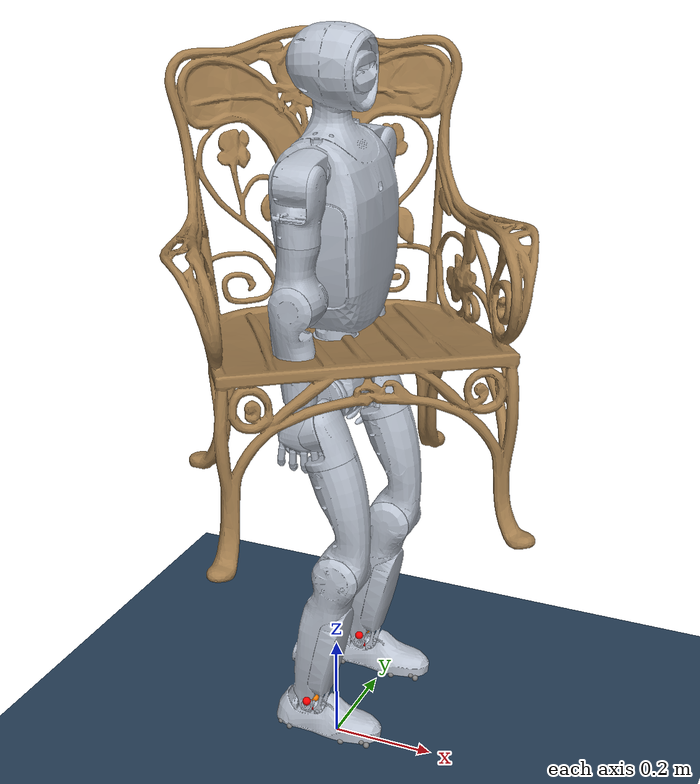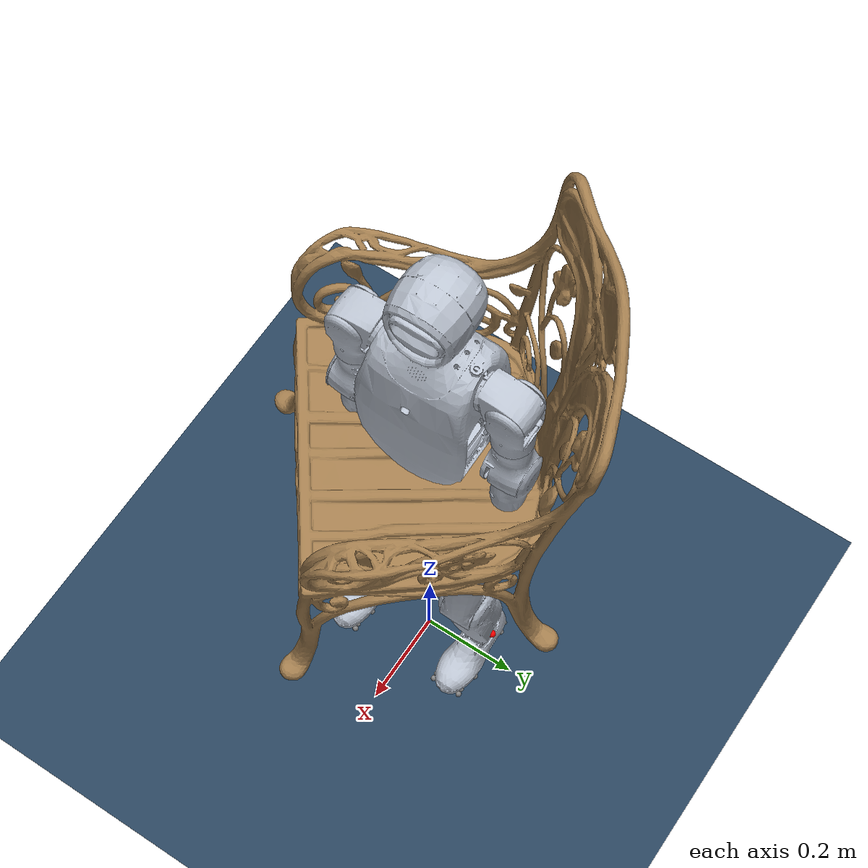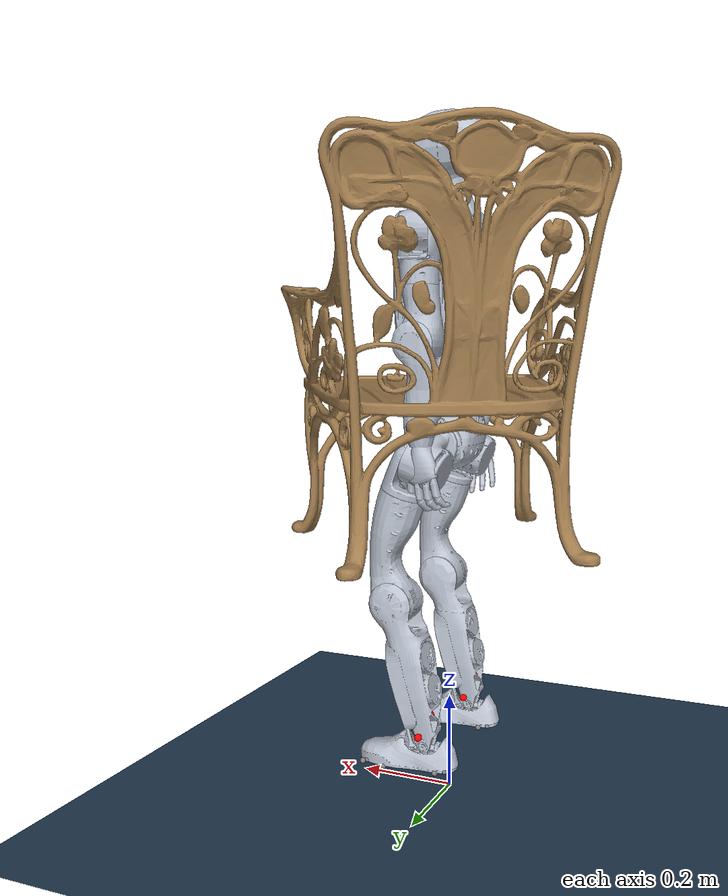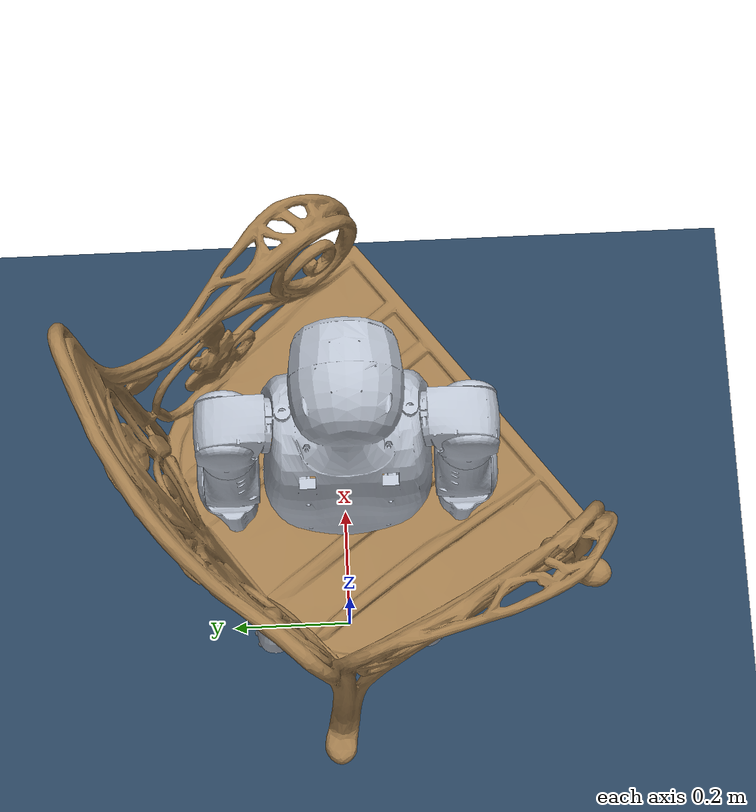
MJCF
<?xml version='1.0' encoding='utf-8'?>
<mujoco model="NE01_holosoma_gmr_v2">
  <compiler angle="radian" meshdir="/home/user/桌面/ne01-robot-assets/meshes" />
  <visual>
    <global offwidth="1280" offheight="720" />
  </visual>
  <option timestep="0.005" gravity="0 0 -9.81" />
  <default>
    <joint damping="0.5" armature="0.01" frictionloss="0.1" />
    <geom contype="1" conaffinity="1" friction="1.0 0.005 0.0001" />
    <default class="visual">
      <geom type="mesh" group="2" density="0" contype="0" conaffinity="0" material="robot_visual" />
    </default>
  </default>
  <asset>
    <texture type="2d" name="groundplane" builtin="checker" mark="edge" rgb1="0.2 0.3 0.4" rgb2="0.1 0.2 0.3" markrgb="0.8 0.8 0.8" width="300" height="300" />
    <material name="groundplane" texture="groundplane" texuniform="true" texrepeat="5 5" reflectance="0.2" />
    <material name="robot_visual" rgba="0.72 0.75 0.8 1" specular="0.35" shininess="0.25" />
    <mesh name="base_link_visual_mesh" file="base_link.STL" />
    <mesh name="WAIST_YAW_visual_mesh" file="WAIST_YAW.STL" />
    <mesh name="TORSO_LINK_visual_mesh" file="TORSO_LINK.STL" />
    <mesh name="SHOULDER_PITCH_R_LINK_visual_mesh" file="SHOULDER_PITCH_R_LINK.STL" />
    <mesh name="SHOULDER_ROLL_R_LINK_visual_mesh" file="SHOULDER_ROLL_R_LINK.STL" />
    <mesh name="SHOULDER_YAW_R_LINK_visual_mesh" file="SHOULDER_YAW_R_LINK.STL" />
    <mesh name="ELBOW_PITCH_R_LINK_visual_mesh" file="ELBOW_PITCH_R_LINK.STL" />
    <mesh name="HAND_YAW_R_LINK_visual_mesh" file="HAND_YAW_R_LINK.STL" />
    <mesh name="SHOULDER_PITCH_L_LINK_visual_mesh" file="SHOULDER_PITCH_L_LINK.STL" />
    <mesh name="SHOULDER_ROLL_L_LINK_visual_mesh" file="SHOULDER_ROLL_L_LINK.STL" />
    <mesh name="SHOULDER_YAW_L_LINK_visual_mesh" file="SHOULDER_YAW_L_LINK.STL" />
    <mesh name="ELBOW_PITCH_L_LINK_visual_mesh" file="ELBOW_PITCH_L_LINK.STL" />
    <mesh name="HAND_YAW_L_LINK_visual_mesh" file="HAND_YAW_L_LINK.STL" />
    <mesh name="HIP_PITCH_R_LINK_visual_mesh" file="HIP_PITCH_R_LINK.STL" />
    <mesh name="HIP_ROLL_R_LINK_visual_mesh" file="HIP_ROLL_R_LINK.STL" />
    <mesh name="HIP_YAW_R_LINK_visual_mesh" file="HIP_YAW_R_LINK.STL" />
    <mesh name="KNEE_PITCH_R_LINK_visual_mesh" file="KNEE_PITCH_R_LINK.STL" />
    <mesh name="ANKLE_PITCH_R_LINK_visual_mesh" file="ANKLE_PITCH_R_LINK.STL" />
    <mesh name="ANKLE_ROLL_R_LINK_visual_mesh" file="ANKLE_ROLL_R_LINK.STL" />
    <mesh name="HIP_PITCH_L_LINK_visual_mesh" file="HIP_PITCH_L_LINK.STL" />
    <mesh name="HIP_ROLL_L_LINK_visual_mesh" file="HIP_ROLL_L_LINK.STL" />
    <mesh name="HIP_YAW_L_LINK_visual_mesh" file="HIP_YAW_L_LINK.STL" />
    <mesh name="KNEE_PITCH_L_LINK_visual_mesh" file="KNEE_PITCH_L_LINK.STL" />
    <mesh name="ANKLE_PITCH_L_LINK_visual_mesh" file="ANKLE_PITCH_L_LINK.STL" />
    <mesh name="ANKLE_ROLL_L_LINK_visual_mesh" file="ANKLE_ROLL_L_LINK.STL" />
    <mesh name="scene_sitting__art_nouveau_curvilinear_iron_and_stained_glass_single_chair__002_visual_mesh" file="/home/user/桌面/GMR/work/scene_model_smoke/cache/157b1edd910aa68496f4d5b3233771636f953fb553dcb283fdf405aadd00bb22/source_visual.obj" scale="0.800000013235 0.800000011921 0.800000041487" />
    <mesh name="scene_sitting__art_nouveau_curvilinear_iron_and_stained_glass_single_chair__002_collision_mesh_000" file="/home/user/桌面/GMR/work/scene_model_smoke/cache/157b1edd910aa68496f4d5b3233771636f953fb553dcb283fdf405aadd00bb22/piece_000.obj" scale="0.800000013235 0.800000011921 0.800000041487" />
    <mesh name="scene_sitting__art_nouveau_curvilinear_iron_and_stained_glass_single_chair__002_collision_mesh_001" file="/home/user/桌面/GMR/work/scene_model_smoke/cache/157b1edd910aa68496f4d5b3233771636f953fb553dcb283fdf405aadd00bb22/piece_001.obj" scale="0.800000013235 0.800000011921 0.800000041487" />
    <mesh name="scene_sitting__art_nouveau_curvilinear_iron_and_stained_glass_single_chair__002_collision_mesh_002" file="/home/user/桌面/GMR/work/scene_model_smoke/cache/157b1edd910aa68496f4d5b3233771636f953fb553dcb283fdf405aadd00bb22/piece_002.obj" scale="0.800000013235 0.800000011921 0.800000041487" />
    <mesh name="scene_sitting__art_nouveau_curvilinear_iron_and_stained_glass_single_chair__002_collision_mesh_003" file="/home/user/桌面/GMR/work/scene_model_smoke/cache/157b1edd910aa68496f4d5b3233771636f953fb553dcb283fdf405aadd00bb22/piece_003.obj" scale="0.800000013235 0.800000011921 0.800000041487" />
    <mesh name="scene_sitting__art_nouveau_curvilinear_iron_and_stained_glass_single_chair__002_collision_mesh_004" file="/home/user/桌面/GMR/work/scene_model_smoke/cache/157b1edd910aa68496f4d5b3233771636f953fb553dcb283fdf405aadd00bb22/piece_004.obj" scale="0.800000013235 0.800000011921 0.800000041487" />
    <mesh name="scene_sitting__art_nouveau_curvilinear_iron_and_stained_glass_single_chair__002_collision_mesh_005" file="/home/user/桌面/GMR/work/scene_model_smoke/cache/157b1edd910aa68496f4d5b3233771636f953fb553dcb283fdf405aadd00bb22/piece_005.obj" scale="0.800000013235 0.800000011921 0.800000041487" />
    <mesh name="scene_sitting__art_nouveau_curvilinear_iron_and_stained_glass_single_chair__002_collision_mesh_006" file="/home/user/桌面/GMR/work/scene_model_smoke/cache/157b1edd910aa68496f4d5b3233771636f953fb553dcb283fdf405aadd00bb22/piece_006.obj" scale="0.800000013235 0.800000011921 0.800000041487" />
    <mesh name="scene_sitting__art_nouveau_curvilinear_iron_and_stained_glass_single_chair__002_collision_mesh_007" file="/home/user/桌面/GMR/work/scene_model_smoke/cache/157b1edd910aa68496f4d5b3233771636f953fb553dcb283fdf405aadd00bb22/piece_007.obj" scale="0.800000013235 0.800000011921 0.800000041487" />
    <mesh name="scene_sitting__art_nouveau_curvilinear_iron_and_stained_glass_single_chair__002_collision_mesh_008" file="/home/user/桌面/GMR/work/scene_model_smoke/cache/157b1edd910aa68496f4d5b3233771636f953fb553dcb283fdf405aadd00bb22/piece_008.obj" scale="0.800000013235 0.800000011921 0.800000041487" />
    <mesh name="scene_sitting__art_nouveau_curvilinear_iron_and_stained_glass_single_chair__002_collision_mesh_009" file="/home/user/桌面/GMR/work/scene_model_smoke/cache/157b1edd910aa68496f4d5b3233771636f953fb553dcb283fdf405aadd00bb22/piece_009.obj" scale="0.800000013235 0.800000011921 0.800000041487" />
    <mesh name="scene_sitting__art_nouveau_curvilinear_iron_and_stained_glass_single_chair__002_collision_mesh_010" file="/home/user/桌面/GMR/work/scene_model_smoke/cache/157b1edd910aa68496f4d5b3233771636f953fb553dcb283fdf405aadd00bb22/piece_010.obj" scale="0.800000013235 0.800000011921 0.800000041487" />
    <mesh name="scene_sitting__art_nouveau_curvilinear_iron_and_stained_glass_single_chair__002_collision_mesh_011" file="/home/user/桌面/GMR/work/scene_model_smoke/cache/157b1edd910aa68496f4d5b3233771636f953fb553dcb283fdf405aadd00bb22/piece_011.obj" scale="0.800000013235 0.800000011921 0.800000041487" />
    <mesh name="scene_sitting__art_nouveau_curvilinear_iron_and_stained_glass_single_chair__002_collision_mesh_012" file="/home/user/桌面/GMR/work/scene_model_smoke/cache/157b1edd910aa68496f4d5b3233771636f953fb553dcb283fdf405aadd00bb22/piece_012.obj" scale="0.800000013235 0.800000011921 0.800000041487" />
    <mesh name="scene_sitting__art_nouveau_curvilinear_iron_and_stained_glass_single_chair__002_collision_mesh_013" file="/home/user/桌面/GMR/work/scene_model_smoke/cache/157b1edd910aa68496f4d5b3233771636f953fb553dcb283fdf405aadd00bb22/piece_013.obj" scale="0.800000013235 0.800000011921 0.800000041487" />
    <mesh name="scene_sitting__art_nouveau_curvilinear_iron_and_stained_glass_single_chair__002_collision_mesh_014" file="/home/user/桌面/GMR/work/scene_model_smoke/cache/157b1edd910aa68496f4d5b3233771636f953fb553dcb283fdf405aadd00bb22/piece_014.obj" scale="0.800000013235 0.800000011921 0.800000041487" />
    <mesh name="scene_sitting__art_nouveau_curvilinear_iron_and_stained_glass_single_chair__002_collision_mesh_015" file="/home/user/桌面/GMR/work/scene_model_smoke/cache/157b1edd910aa68496f4d5b3233771636f953fb553dcb283fdf405aadd00bb22/piece_015.obj" scale="0.800000013235 0.800000011921 0.800000041487" />
    <mesh name="scene_sitting__art_nouveau_curvilinear_iron_and_stained_glass_single_chair__002_collision_mesh_016" file="/home/user/桌面/GMR/work/scene_model_smoke/cache/157b1edd910aa68496f4d5b3233771636f953fb553dcb283fdf405aadd00bb22/piece_016.obj" scale="0.800000013235 0.800000011921 0.800000041487" />
    <mesh name="scene_sitting__art_nouveau_curvilinear_iron_and_stained_glass_single_chair__002_collision_mesh_017" file="/home/user/桌面/GMR/work/scene_model_smoke/cache/157b1edd910aa68496f4d5b3233771636f953fb553dcb283fdf405aadd00bb22/piece_017.obj" scale="0.800000013235 0.800000011921 0.800000041487" />
    <mesh name="scene_sitting__art_nouveau_curvilinear_iron_and_stained_glass_single_chair__002_collision_mesh_018" file="/home/user/桌面/GMR/work/scene_model_smoke/cache/157b1edd910aa68496f4d5b3233771636f953fb553dcb283fdf405aadd00bb22/piece_018.obj" scale="0.800000013235 0.800000011921 0.800000041487" />
    <mesh name="scene_sitting__art_nouveau_curvilinear_iron_and_stained_glass_single_chair__002_collision_mesh_019" file="/home/user/桌面/GMR/work/scene_model_smoke/cache/157b1edd910aa68496f4d5b3233771636f953fb553dcb283fdf405aadd00bb22/piece_019.obj" scale="0.800000013235 0.800000011921 0.800000041487" />
    <mesh name="scene_sitting__art_nouveau_curvilinear_iron_and_stained_glass_single_chair__002_collision_mesh_020" file="/home/user/桌面/GMR/work/scene_model_smoke/cache/157b1edd910aa68496f4d5b3233771636f953fb553dcb283fdf405aadd00bb22/piece_020.obj" scale="0.800000013235 0.800000011921 0.800000041487" />
    <mesh name="scene_sitting__art_nouveau_curvilinear_iron_and_stained_glass_single_chair__002_collision_mesh_021" file="/home/user/桌面/GMR/work/scene_model_smoke/cache/157b1edd910aa68496f4d5b3233771636f953fb553dcb283fdf405aadd00bb22/piece_021.obj" scale="0.800000013235 0.800000011921 0.800000041487" />
    <mesh name="scene_sitting__art_nouveau_curvilinear_iron_and_stained_glass_single_chair__002_collision_mesh_022" file="/home/user/桌面/GMR/work/scene_model_smoke/cache/157b1edd910aa68496f4d5b3233771636f953fb553dcb283fdf405aadd00bb22/piece_022.obj" scale="0.800000013235 0.800000011921 0.800000041487" />
    <mesh name="scene_sitting__art_nouveau_curvilinear_iron_and_stained_glass_single_chair__002_collision_mesh_023" file="/home/user/桌面/GMR/work/scene_model_smoke/cache/157b1edd910aa68496f4d5b3233771636f953fb553dcb283fdf405aadd00bb22/piece_023.obj" scale="0.800000013235 0.800000011921 0.800000041487" />
    <mesh name="scene_sitting__art_nouveau_curvilinear_iron_and_stained_glass_single_chair__002_collision_mesh_024" file="/home/user/桌面/GMR/work/scene_model_smoke/cache/157b1edd910aa68496f4d5b3233771636f953fb553dcb283fdf405aadd00bb22/piece_024.obj" scale="0.800000013235 0.800000011921 0.800000041487" />
    <mesh name="scene_sitting__art_nouveau_curvilinear_iron_and_stained_glass_single_chair__002_collision_mesh_025" file="/home/user/桌面/GMR/work/scene_model_smoke/cache/157b1edd910aa68496f4d5b3233771636f953fb553dcb283fdf405aadd00bb22/piece_025.obj" scale="0.800000013235 0.800000011921 0.800000041487" />
    <mesh name="scene_sitting__art_nouveau_curvilinear_iron_and_stained_glass_single_chair__002_collision_mesh_026" file="/home/user/桌面/GMR/work/scene_model_smoke/cache/157b1edd910aa68496f4d5b3233771636f953fb553dcb283fdf405aadd00bb22/piece_026.obj" scale="0.800000013235 0.800000011921 0.800000041487" />
    <mesh name="scene_sitting__art_nouveau_curvilinear_iron_and_stained_glass_single_chair__002_collision_mesh_027" file="/home/user/桌面/GMR/work/scene_model_smoke/cache/157b1edd910aa68496f4d5b3233771636f953fb553dcb283fdf405aadd00bb22/piece_027.obj" scale="0.800000013235 0.800000011921 0.800000041487" />
    <mesh name="scene_sitting__art_nouveau_curvilinear_iron_and_stained_glass_single_chair__002_collision_mesh_028" file="/home/user/桌面/GMR/work/scene_model_smoke/cache/157b1edd910aa68496f4d5b3233771636f953fb553dcb283fdf405aadd00bb22/piece_028.obj" scale="0.800000013235 0.800000011921 0.800000041487" />
    <mesh name="scene_sitting__art_nouveau_curvilinear_iron_and_stained_glass_single_chair__002_collision_mesh_029" file="/home/user/桌面/GMR/work/scene_model_smoke/cache/157b1edd910aa68496f4d5b3233771636f953fb553dcb283fdf405aadd00bb22/piece_029.obj" scale="0.800000013235 0.800000011921 0.800000041487" />
    <mesh name="scene_sitting__art_nouveau_curvilinear_iron_and_stained_glass_single_chair__002_collision_mesh_030" file="/home/user/桌面/GMR/work/scene_model_smoke/cache/157b1edd910aa68496f4d5b3233771636f953fb553dcb283fdf405aadd00bb22/piece_030.obj" scale="0.800000013235 0.800000011921 0.800000041487" />
    <mesh name="scene_sitting__art_nouveau_curvilinear_iron_and_stained_glass_single_chair__002_collision_mesh_031" file="/home/user/桌面/GMR/work/scene_model_smoke/cache/157b1edd910aa68496f4d5b3233771636f953fb553dcb283fdf405aadd00bb22/piece_031.obj" scale="0.800000013235 0.800000011921 0.800000041487" />
  </asset>
  <worldbody>
    <light directional="true" diffuse="0.8 0.8 0.8" specular="0.3 0.3 0.3" pos="0 0 5" dir="0 0 -1" />
    <geom name="floor" type="plane" size="0 0 0.05" material="groundplane" />
    <body name="base_link" pos="0 0 0.75">
      <inertial pos="-0.00160054 4.35e-06 0.01056332" quat="0.477002963734 -0.522056706267 -0.522050243869 0.476852714059" mass="2.82187076" diaginertia="0.00584702993387 0.0067494516841 0.00770142838203" />
      <joint name="floating_base" type="free" />
      <geom name="base_link_visual" class="visual" mesh="base_link_visual_mesh" />
      <body name="WAIST_YAW" pos="0 0 0.0485">
        <inertial pos="0.00034825 0 0.05706712" quat="0.707808821044 0.000595087244019 -0.70640354333 0.000593880240741" mass="1.07735811" diaginertia="0.00073068560792 0.00183081996637 0.00184271442571" />
        <joint name="WAIST_YAW_JOINT" pos="0 0 0" axis="0 0 1" range="-2.618 2.618" actuatorfrcrange="-75.0 75.0" armature="0.0159372" />
        <geom name="WAIST_YAW_visual" class="visual" mesh="WAIST_YAW_visual_mesh" />
        <body name="TORSO_LINK" pos="0 0 0.103">
          <inertial pos="-8.796e-05 0.00718498 0.18650317" quat="0.0425789420023 -0.69516134631 0.0198716664059 0.717316424717" mass="10.97963488" diaginertia="0.056898495459 0.182670406799 0.201474337742" />
          <joint name="TORSO_ROLL_JOINT" pos="0 0 0" axis="1 0 0" range="-0.5236 0.5236" actuatorfrcrange="-75.0 75.0" armature="0.0159372" />
          <geom name="TORSO_LINK_visual" class="visual" mesh="TORSO_LINK_visual_mesh" />
          <body name="SHOULDER_PITCH_R_LINK" pos="0 -0.0859965 0.2721" quat="0.996195 -0.0871558 0 0">
            <inertial pos="-0.00051598 -0.0474545832038 -0.0126455010535" quat="0.402232492477 0.593755439075 0.443217292021 0.537793578074" mass="0.91137" diaginertia="0.000539162956871 0.00137254918379 0.00142074785934" />
            <joint name="SHOULDER_PITCH_R_JOINT" pos="0 0 0" axis="0 1 0" range="-3.0892 2.6704" actuatorfrcrange="-75.0 75.0" armature="0.0159372" />
            <geom name="SHOULDER_PITCH_R_LINK_visual" class="visual" mesh="SHOULDER_PITCH_R_LINK_visual_mesh" />
            <body name="SHOULDER_ROLL_R_LINK" pos="0 -0.0666201 -0.0191295" quat="0.996195 0.0871558 0 0">
              <inertial pos="0.0057807 0.000638302550332 -0.0417087808827" quat="0.512215024021 -0.571460963587 -0.442520285044 -0.463943890561" mass="0.76208" diaginertia="0.000486837727254 0.00112651333252 0.00123182894022" />
              <joint name="SHOULDER_ROLL_R_JOINT" pos="0 0 0" axis="1 0 0" range="-3.141593 0.017453" actuatorfrcrange="-75.0 75.0" armature="0.0159372" />
              <geom name="SHOULDER_ROLL_R_LINK_visual" class="visual" mesh="SHOULDER_ROLL_R_LINK_visual_mesh" />
              <body name="SHOULDER_YAW_R_LINK" pos="0 0 -0.1">
                <inertial pos="-0.00061701 -0.000838247449668 -0.0809037808827" quat="0.510728308661 -0.483368016869 -0.520725828728 -0.484103879655" mass="0.9843" diaginertia="0.00064414780112 0.00249158407462 0.00250148812426" />
                <joint name="SHOULDER_YAW_R_JOINT" pos="0 0 0" axis="0 0 1" range="-2.618 2.618" actuatorfrcrange="-21.0 21.0" armature="0.00572917" />
                <geom name="SHOULDER_YAW_R_LINK_visual" class="visual" mesh="SHOULDER_YAW_R_LINK_visual_mesh" />
                <body name="ELBOW_PITCH_R_LINK" pos="0 0 -0.109171">
                  <inertial pos="-0.0034548 -0.00665854744967 -0.0886027808827" quat="0.517709973549 0.480931609385 -0.587919437338 0.393740911747" mass="0.8197" diaginertia="0.00050627179317 0.00350439512775 0.00352916307908" />
                  <joint name="ELBOW_PITCH_R_JOINT" pos="0 0 0" axis="0 1 0" range="-2.0944 1.0472" actuatorfrcrange="-48.0 48.0" armature="0.00618084" />
                  <geom name="ELBOW_PITCH_R_LINK_visual" class="visual" mesh="ELBOW_PITCH_R_LINK_visual_mesh" />
                  <body name="HAND_YAW_R_LINK" pos="-0.0014 0 -0.178">
                    <inertial pos="0.00226805 0.00219935255033 -0.0442847808827" quat="0.397534893731 0.584269383347 -0.440996340467 0.553278884148" mass="0.33396" diaginertia="0.000143874384004 0.00078701902436 0.000864016591636" />
                    <joint name="HAND_YAW_R_JOINT" pos="0 0 0" axis="0 0 1" range="-1.527 1.527" actuatorfrcrange="-21.0 21.0" armature="0.00572917" />
                    <geom name="HAND_YAW_R_LINK_visual" class="visual" mesh="HAND_YAW_R_LINK_visual_mesh" />
                    <geom name="HAND_YAW_R_LINK_g1_aligned_00" group="3" type="capsule" pos="0.026714207838 0.020209967752 -0.080200164207" quat="-0.0610753637 0.789488851 -0.592772465 -0.146962437" density="0" contype="1" conaffinity="1" rgba="0.3 0.7 0.9 0.25" size="0.0185 0.0094157665" />
                    <geom name="HAND_YAW_R_LINK_g1_aligned_01" group="3" type="capsule" pos="0.00005035169 0.0118063127 -0.0779441401" quat="-0.0610753637 0.789488851 -0.592772465 -0.146962437" density="0" contype="1" conaffinity="1" rgba="0.3 0.7 0.9 0.25" size="0.0185 0.0094157665" />
                    <geom name="HAND_YAW_R_LINK_g1_aligned_02" group="3" type="capsule" pos="-0.019613504458 0.003402657648 -0.075688115993" quat="-0.0610753637 0.789488851 -0.592772465 -0.146962437" density="0" contype="1" conaffinity="1" rgba="0.3 0.7 0.9 0.25" size="0.0185 0.0094157665" />
                  </body>
                  <geom name="ELBOW_PITCH_R_LINK_g1_aligned_00" group="3" type="capsule" pos="-0.00163478548 -0.00524696159 -0.0735293163" quat="0.994311384 0.0973419093 -0.0432368365 0" density="0" contype="1" conaffinity="1" rgba="0.3 0.7 0.9 0.25" size="0.0448510968 0.0741382113" />
                </body>
                <geom name="SHOULDER_YAW_R_LINK_g1_aligned_00" group="3" type="capsule" pos="0.000561816445 0.0020457388 -0.0321516215" quat="0.999893803 -0.0140621347 0.00382619053 0" density="0" contype="1" conaffinity="1" rgba="0.3 0.7 0.9 0.25" size="0.0452460449 0.0770473221" />
              </body>
            </body>
          </body>
          <body name="SHOULDER_PITCH_L_LINK" pos="0 0.0859965 0.2721" quat="0.996195 0.0871558 0 0">
            <inertial pos="-0.00051598 0.0474545832038 -0.0126455010535" quat="0.593755439075 0.402232492477 -0.537793578074 -0.443217292021" mass="0.91137" diaginertia="0.000539162956871 0.00137254918379 0.00142074785934" />
            <joint name="SHOULDER_PITCH_L_JOINT" pos="0 0 0" axis="0 1 0" range="-3.0892 2.6704" actuatorfrcrange="-75.0 75.0" armature="0.0159372" />
            <geom name="SHOULDER_PITCH_L_LINK_visual" class="visual" mesh="SHOULDER_PITCH_L_LINK_visual_mesh" />
            <body name="SHOULDER_ROLL_L_LINK" pos="0 0.0666201 -0.0191295" quat="0.996195 -0.0871558 0 0">
              <inertial pos="0.0057807 -0.000638302550332 -0.0417087808827" quat="0.512215024021 -0.571460963587 -0.442520285044 -0.463943890561" mass="0.76208" diaginertia="0.000486837727254 0.00112651333252 0.00123182894022" />
              <joint name="SHOULDER_ROLL_L_JOINT" pos="0 0 0" axis="1 0 0" range="-0.017453 3.141593" actuatorfrcrange="-75.0 75.0" armature="0.0159372" />
              <geom name="SHOULDER_ROLL_L_LINK_visual" class="visual" mesh="SHOULDER_ROLL_L_LINK_visual_mesh" />
              <body name="SHOULDER_YAW_L_LINK" pos="0 0 -0.1">
                <inertial pos="-0.00061701 0.000789847449668 -0.0809037808827" quat="0.506155056301 -0.488152571495 -0.507345615463 -0.498110984013" mass="0.9843" diaginertia="0.000644147624165 0.00249161737095 0.00250145500489" />
                <joint name="SHOULDER_YAW_L_JOINT" pos="0 0 0" axis="0 0 1" range="-2.618 2.618" actuatorfrcrange="-21.0 21.0" armature="0.00572917" />
                <geom name="SHOULDER_YAW_L_LINK_visual" class="visual" mesh="SHOULDER_YAW_L_LINK_visual_mesh" />
                <body name="ELBOW_PITCH_L_LINK" pos="0 0 -0.109171">
                  <inertial pos="-0.0034548 0.00661014744967 -0.0886027808827" quat="0.480931609385 0.517709973549 -0.393740911747 0.587919437338" mass="0.8197" diaginertia="0.00050627179317 0.00350439512775 0.00352916307908" />
                  <joint name="ELBOW_PITCH_L_JOINT" pos="0 0 0" axis="0 1 0" range="-2.0944 1.0472" actuatorfrcrange="-48.0 48.0" armature="0.00618084" />
                  <geom name="ELBOW_PITCH_L_LINK_visual" class="visual" mesh="ELBOW_PITCH_L_LINK_visual_mesh" />
                  <body name="HAND_YAW_L_LINK" pos="-0.0014 0 -0.178">
                    <inertial pos="0.00226805 -0.00224775255033 -0.0442847808827" quat="0.553694746593 0.441988248956 -0.583229791265 0.397380832402" mass="0.33396" diaginertia="0.000143865615857 0.00078710111017 0.000863943273973" />
                    <joint name="HAND_YAW_L_JOINT" pos="0 0 0" axis="0 0 1" range="-1.527 1.527" actuatorfrcrange="-21.0 21.0" armature="0.00572917" />
                    <geom name="HAND_YAW_L_LINK_visual" class="visual" mesh="HAND_YAW_L_LINK_visual_mesh" />
                    <geom name="HAND_YAW_L_LINK_g1_aligned_00" group="3" type="capsule" pos="0.026714207838 -0.020209967752 -0.080200164207" quat="0.789488851 -0.0610753637 0.146962437 0.592772465" density="0" contype="1" conaffinity="1" rgba="0.3 0.7 0.9 0.25" size="0.0185 0.0094157665" />
                    <geom name="HAND_YAW_L_LINK_g1_aligned_01" group="3" type="capsule" pos="0.00005035169 -0.0118063127 -0.0779441401" quat="0.789488851 -0.0610753637 0.146962437 0.592772465" density="0" contype="1" conaffinity="1" rgba="0.3 0.7 0.9 0.25" size="0.0185 0.0094157665" />
                    <geom name="HAND_YAW_L_LINK_g1_aligned_02" group="3" type="capsule" pos="-0.019613504458 -0.003402657648 -0.075688115993" quat="0.789488851 -0.0610753637 0.146962437 0.592772465" density="0" contype="1" conaffinity="1" rgba="0.3 0.7 0.9 0.25" size="0.0185 0.0094157665" />
                  </body>
                  <geom name="ELBOW_PITCH_L_LINK_g1_aligned_00" group="3" type="capsule" pos="-0.00163478548 0.00524696159 -0.0735293163" quat="0.0973419093 0.994311384 0 0.0432368365" density="0" contype="1" conaffinity="1" rgba="0.3 0.7 0.9 0.25" size="0.0448510968 0.0741382113" />
                </body>
                <geom name="SHOULDER_YAW_L_LINK_g1_aligned_00" group="3" type="capsule" pos="0.000561816445 -0.0020457388 -0.0321516215" quat="-0.0140621347 0.999893803 0 -0.00382619053" density="0" contype="1" conaffinity="1" rgba="0.3 0.7 0.9 0.25" size="0.0452460449 0.0770473221" />
              </body>
            </body>
          </body>
          <geom name="TORSO_LINK_g1_aligned_00" group="3" type="capsule" pos="-0.000781298719 0.00249811756 0.0528561902" quat="0.707106781 -0.707106781 0 0" density="0" contype="1" conaffinity="1" rgba="0.3 0.7 0.9 0.25" size="0.0868249242 0.0113792676" />
          <geom name="TORSO_LINK_g1_aligned_01" group="3" type="capsule" pos="-0.00841578464 5.26137675e-11 0.158409893" quat="0.707106781 -0.707106781 0 0" density="0" contype="1" conaffinity="1" rgba="0.3 0.7 0.9 0.25" size="0.0927340172 0.0102333436" />
          <geom name="TORSO_LINK_g1_aligned_02" group="3" type="capsule" pos="-0.00781965612 0.00416911678 0.26301321" quat="0.707106781 -0.707106781 0 0" density="0" contype="1" conaffinity="1" rgba="0.3 0.7 0.9 0.25" size="0.0883319959 0.0128161209" />
          <geom name="TORSO_LINK_g1_aligned_03" group="3" type="sphere" pos="-0.000480660066 3.94272796e-09 0.42983798" quat="1 0 0 0" density="0" contype="1" conaffinity="1" rgba="0.3 0.7 0.9 0.25" size="0.0913046113" />
        </body>
      </body>
      <body name="HIP_PITCH_R_LINK" pos="0 -0.0682 0">
        <inertial pos="0.0043073 -0.041764 -0.021909" quat="0.29110170011 0.679991553243 -0.39426361507 -0.545369131454" mass="1.4971" diaginertia="0.00137847309576 0.00261392172088 0.00278020518335" />
        <joint name="HIP_PITCH_R_JOINT" pos="0 0 0" axis="0 1 0" range="-2.5307 2.8798" actuatorfrcrange="-180 180" armature="0.0520425" />
        <geom name="HIP_PITCH_R_LINK_visual" class="visual" mesh="HIP_PITCH_R_LINK_visual_mesh" />
        <body name="HIP_ROLL_R_LINK" pos="0.0235979 -0.0583562 -0.0259965" quat="0.984808 0 -0.173648 0">
          <inertial pos="0.00842801830333 -7.229e-05 -0.038330530645" quat="0.75304610141 0.00843465346188 -0.657899849944 0.00426769439836" mass="0.8316" diaginertia="0.000528671554766 0.00171109402654 0.00180576441869" />
          <joint name="HIP_ROLL_R_JOINT" pos="0 0 0" axis="1 0 0" range="-2.9671 0.5236" actuatorfrcrange="-180 180" armature="0.0520425" />
          <geom name="HIP_ROLL_R_LINK_visual" class="visual" mesh="HIP_ROLL_R_LINK_visual_mesh" />
          <body name="HIP_YAW_R_LINK" pos="0 0 -0.084395">
            <site name="ground_guard_right_lower_thigh" type="sphere" pos="-0.064 0 -0.240" size="0.008" />
            <inertial pos="-0.0262589060404 0.000160478 -0.122849669394" quat="0.408041584081 0.410837350757 0.574345933535 -0.578654893279" mass="2.2571" diaginertia="0.00228482146729 0.017629254428 0.0180590241047" />
            <joint name="HIP_YAW_R_JOINT" pos="0 0 0" axis="0 0 1" range="-2.7576 2.7576" actuatorfrcrange="-75.0 75.0" armature="0.0159372" />
            <geom name="HIP_YAW_R_LINK_visual" class="visual" mesh="HIP_YAW_R_LINK_visual_mesh" />
            <body name="KNEE_PITCH_R_LINK" pos="-0.0588133 0 -0.2015" quat="0.984813 0 0.173616 0">
              <site name="ground_contact_right_knee" type="sphere" pos="-0.056 0 -0.282" size="0.008" rgba="1 0.5 0 1" />
              <site name="ground_guard_right_knee_center" type="sphere" pos="-0.055 0 -0.303" size="0.008" rgba="1 0 0 1" />
              <site name="ground_guard_right_knee_inner" type="sphere" pos="-0.060 0.028 -0.275" size="0.008" rgba="1 0 0 1" />
              <site name="ground_guard_right_knee_outer" type="sphere" pos="-0.060 -0.028 -0.275" size="0.008" rgba="1 0 0 1" />
              <site name="ground_guard_right_upper_shin" type="sphere" pos="-0.075 0 -0.230" size="0.008" rgba="1 0 0 1" />
              <inertial pos="-0.0363273347314 -0.003117496 -0.126907197947" quat="0.612600362425 -0.0266934962827 0.784961218577 0.0885671414491" mass="2.871" diaginertia="0.00261441673469 0.0178867856184 0.0180890976469" />
              <joint name="KNEE_PITCH_R_JOINT" pos="0 0 0" axis="0 1 0" range="-0.6592 2.3078" actuatorfrcrange="-180 180" armature="0.0520425" />
              <geom name="KNEE_PITCH_R_LINK_visual" class="visual" mesh="KNEE_PITCH_R_LINK_visual_mesh" />
              <body name="ANKLE_PITCH_R_LINK" pos="-0.0661134 0 -0.291599">
                <inertial pos="-0.00254135534815 -9.4876e-05 -0.00328960053902" quat="0 -0.998186853151 0 -0.06019141298" mass="0.13585" diaginertia="1.80750315049e-05 2.356e-05 3.15649684951e-05" />
                <joint name="ANKLE_PITCH_R_JOINT" pos="0 0 0" axis="0 1 0" range="-0.667 0.7292" actuatorfrcrange="-48.0 48.0" armature="0.0185425" />
                <geom name="ANKLE_PITCH_R_LINK_visual" class="visual" mesh="ANKLE_PITCH_R_LINK_visual_mesh" />
                <body name="ANKLE_ROLL_R_LINK" pos="0 0 -0.008">
                  <body name="right_toe_link" pos="0.1 0 -0.02" />
                  <geom name="right_foot_rear_left_collision" type="sphere" size="0.005" pos="-0.05 0.025 -0.035" />
                  <geom name="right_foot_rear_right_collision" type="sphere" size="0.005" pos="-0.05 -0.025 -0.035" />
                  <geom name="right_foot_front_left_collision" type="sphere" size="0.005" pos="0.12 0.03 -0.035" />
                  <geom name="right_foot_front_right_collision" type="sphere" size="0.005" pos="0.12 -0.03 -0.035" />
                  <site name="ground_contact_right_foot_center" type="sphere" pos="0.035 0 -0.039" size="0.009" />
                  <site name="ground_guard_right_heel_inner" type="sphere" pos="-0.030 0.029 -0.039" size="0.006" />
                  <site name="ground_guard_right_heel_outer" type="sphere" pos="-0.030 -0.029 -0.039" size="0.006" />
                  <site name="ground_guard_right_forefoot_inner" type="sphere" pos="0.080 0.037 -0.039" size="0.006" />
                  <site name="ground_guard_right_forefoot_outer" type="sphere" pos="0.080 -0.037 -0.039" size="0.006" />
                  <site name="ground_guard_right_toe_inner" type="sphere" pos="0.130 0.030 -0.039" size="0.006" />
                  <site name="ground_guard_right_toe_outer" type="sphere" pos="0.130 -0.030 -0.039" size="0.006" />
                  <inertial pos="0.0321738507582 -0.000101716 -0.0219672446324" quat="0.999512448671 0 0.0312228274138 0" mass="0.533" diaginertia="0.000250914162918 0.0015549 0.00165134583708" />
                  <joint name="ANKLE_ROLL_R_JOINT" pos="0 0 0" axis="1 0 0" range="-0.2618 0.2618" actuatorfrcrange="-48.0 48.0" armature="0.0080351" />
                  <geom name="ANKLE_ROLL_R_LINK_visual" class="visual" mesh="ANKLE_ROLL_R_LINK_visual_mesh" />
                  <geom name="ANKLE_ROLL_R_LINK_g1_aligned_00" group="3" type="capsule" pos="0.0805367 -0.0289393 -0.03" quat="0.707106781 0 0.707106781 0" density="0" contype="1" conaffinity="1" rgba="0.3 0.7 0.9 0.25" size="0.01 0.018762" />
                  <geom name="ANKLE_ROLL_R_LINK_g1_aligned_01" group="3" type="capsule" pos="0.0396949 -0.0200504 -0.03" quat="0.707106781 0 0.707106781 0" density="0" contype="1" conaffinity="1" rgba="0.3 0.7 0.9 0.25" size="0.008 0.0860645" />
                  <geom name="ANKLE_ROLL_R_LINK_g1_aligned_02" group="3" type="capsule" pos="0.0391197 -0.0111615 -0.03" quat="0.707106781 0 0.707106781 0" density="0" contype="1" conaffinity="1" rgba="0.3 0.7 0.9 0.25" size="0.01 0.094693" />
                  <geom name="ANKLE_ROLL_R_LINK_g1_aligned_03" group="3" type="capsule" pos="0.0391197 -5.04e-05 -0.03" quat="0.707106781 0 0.707106781 0" density="0" contype="1" conaffinity="1" rgba="0.3 0.7 0.9 0.25" size="0.01 0.096994" />
                  <geom name="ANKLE_ROLL_R_LINK_g1_aligned_04" group="3" type="capsule" pos="0.0391197 0.0110607 -0.03" quat="0.707106781 0 0.707106781 0" density="0" contype="1" conaffinity="1" rgba="0.3 0.7 0.9 0.25" size="0.01 0.094693" />
                  <geom name="ANKLE_ROLL_R_LINK_g1_aligned_05" group="3" type="capsule" pos="0.0396949 0.0199496 -0.03" quat="0.707106781 0 0.707106781 0" density="0" contype="1" conaffinity="1" rgba="0.3 0.7 0.9 0.25" size="0.008 0.0860645" />
                  <geom name="ANKLE_ROLL_R_LINK_g1_aligned_06" group="3" type="capsule" pos="0.0805367 0.0288385 -0.03" quat="0.707106781 0 0.707106781 0" density="0" contype="1" conaffinity="1" rgba="0.3 0.7 0.9 0.25" size="0.01 0.018762" />
                </body>
              </body>
              <geom name="KNEE_PITCH_R_LINK_g1_aligned_00" group="3" type="capsule" pos="-0.0306914951 0.00279452786 -0.129891034" quat="0.993175741 0.0214886221 0.114630655 0" density="0" contype="1" conaffinity="1" rgba="0.3 0.7 0.9 0.25" size="0.0539636192 0.07" />
            </body>
          </body>
          <geom name="HIP_ROLL_R_LINK_g1_aligned_00" group="3" type="capsule" pos="-0.0160011303 0.0014969993 -0.149046814" quat="0.989756554 -0.00532973495 0.142665895 0" density="0" contype="1" conaffinity="1" rgba="0.3 0.7 0.9 0.25" size="0.059917811 0.075" />
        </body>
      </body>
      <body name="HIP_PITCH_L_LINK" pos="0 0.0682 0">
        <inertial pos="0.0043073 0.041764 -0.021909" quat="0.679991553243 0.29110170011 0.545369131454 0.39426361507" mass="1.4971" diaginertia="0.00137847309576 0.00261392172088 0.00278020518335" />
        <joint name="HIP_PITCH_L_JOINT" pos="0 0 0" axis="0 1 0" range="-2.5307 2.8798" actuatorfrcrange="-180 180" armature="0.0520425" />
        <geom name="HIP_PITCH_L_LINK_visual" class="visual" mesh="HIP_PITCH_L_LINK_visual_mesh" />
        <body name="HIP_ROLL_L_LINK" pos="0.0235979 0.0583562 -0.0259965" quat="0.984808 0 -0.173648 0">
          <inertial pos="0.00842801830333 7.229e-05 -0.038330530645" quat="0.00843465346188 0.75304610141 -0.00426769439836 0.657899849944" mass="0.8316" diaginertia="0.000528671554766 0.00171109402654 0.00180576441869" />
          <joint name="HIP_ROLL_L_JOINT" pos="0 0 0" axis="1 0 0" range="-0.5236 2.9671" actuatorfrcrange="-180 180" armature="0.0520425" />
          <geom name="HIP_ROLL_L_LINK_visual" class="visual" mesh="HIP_ROLL_L_LINK_visual_mesh" />
          <body name="HIP_YAW_L_LINK" pos="0 0 -0.084395">
            <site name="ground_guard_left_lower_thigh" type="sphere" pos="-0.063 0 -0.240" size="0.008" />
            <inertial pos="-0.0262589060404 -0.000160478 -0.122849669394" quat="0.576060702225 -0.576947852281 -0.409283671518 -0.409599950353" mass="2.2571" diaginertia="0.0022848208698 0.0176292763592 0.018059002771" />
            <joint name="HIP_YAW_L_JOINT" pos="0 0 0" axis="0 0 1" range="-2.7576 2.7576" actuatorfrcrange="-75.0 75.0" armature="0.0159372" />
            <geom name="HIP_YAW_L_LINK_visual" class="visual" mesh="HIP_YAW_L_LINK_visual_mesh" />
            <body name="KNEE_PITCH_L_LINK" pos="-0.0588133 0 -0.2015" quat="0.984813 0 0.173616 0">
              <site name="ground_contact_left_knee" type="sphere" pos="-0.055 0 -0.270" size="0.008" rgba="1 0.5 0 1" />
              <site name="ground_guard_left_knee_center" type="sphere" pos="-0.055 0 -0.303" size="0.008" rgba="1 0 0 1" />
              <site name="ground_guard_left_knee_inner" type="sphere" pos="-0.060 -0.028 -0.270" size="0.008" rgba="1 0 0 1" />
              <site name="ground_guard_left_knee_outer" type="sphere" pos="-0.060 0.028 -0.270" size="0.008" rgba="1 0 0 1" />
              <site name="ground_guard_left_upper_shin" type="sphere" pos="-0.075 0 -0.230" size="0.008" rgba="1 0 0 1" />
              <inertial pos="-0.0363273347314 0.003017802 -0.126907197947" quat="0.612600362425 0.0266934962827 0.784961218577 -0.0885671414491" mass="2.871" diaginertia="0.00261441673469 0.0178867856184 0.0180890976469" />
              <joint name="KNEE_PITCH_L_JOINT" pos="0 0 0" axis="0 1 0" range="-0.6592 2.3078" actuatorfrcrange="-180 180" armature="0.0520425" />
              <geom name="KNEE_PITCH_L_LINK_visual" class="visual" mesh="KNEE_PITCH_L_LINK_visual_mesh" />
              <body name="ANKLE_PITCH_L_LINK" pos="-0.0661134 0 -0.291599">
                <inertial pos="-0.00254135534815 5.82199999999e-06 -0.00328960053902" quat="0 -0.998186853151 0 -0.06019141298" mass="0.13585" diaginertia="1.80750315049e-05 2.356e-05 3.15649684951e-05" />
                <joint name="ANKLE_PITCH_L_JOINT" pos="0 0 0" axis="0 1 0" range="-0.667 0.7292" actuatorfrcrange="-48.0 48.0" armature="0.0185425" />
                <geom name="ANKLE_PITCH_L_LINK_visual" class="visual" mesh="ANKLE_PITCH_L_LINK_visual_mesh" />
                <body name="ANKLE_ROLL_L_LINK" pos="0 0 -0.008">
                  <body name="left_toe_link" pos="0.1 0 -0.02" />
                  <geom name="left_foot_rear_left_collision" type="sphere" size="0.005" pos="-0.05 0.025 -0.035" />
                  <geom name="left_foot_rear_right_collision" type="sphere" size="0.005" pos="-0.05 -0.025 -0.035" />
                  <geom name="left_foot_front_left_collision" type="sphere" size="0.005" pos="0.12 0.03 -0.035" />
                  <geom name="left_foot_front_right_collision" type="sphere" size="0.005" pos="0.12 -0.03 -0.035" />
                  <site name="ground_contact_left_foot_center" type="sphere" pos="0.035 0 -0.039" size="0.009" />
                  <site name="ground_guard_left_heel_inner" type="sphere" pos="-0.030 -0.029 -0.039" size="0.006" />
                  <site name="ground_guard_left_heel_outer" type="sphere" pos="-0.030 0.029 -0.039" size="0.006" />
                  <site name="ground_guard_left_forefoot_inner" type="sphere" pos="0.080 -0.037 -0.039" size="0.006" />
                  <site name="ground_guard_left_forefoot_outer" type="sphere" pos="0.080 0.037 -0.039" size="0.006" />
                  <site name="ground_guard_left_toe_inner" type="sphere" pos="0.130 -0.030 -0.039" size="0.006" />
                  <site name="ground_guard_left_toe_outer" type="sphere" pos="0.130 0.030 -0.039" size="0.006" />
                  <inertial pos="0.0321738507582 -1.01800000001e-06 -0.0219672446324" quat="0.999512448671 0 0.0312228274138 0" mass="0.533" diaginertia="0.000250914162918 0.0015549 0.00165134583708" />
                  <joint name="ANKLE_ROLL_L_JOINT" pos="0 0 0" axis="1 0 0" range="-0.2618 0.2618" actuatorfrcrange="-48.0 48.0" armature="0.0080351" />
                  <geom name="ANKLE_ROLL_L_LINK_visual" class="visual" mesh="ANKLE_ROLL_L_LINK_visual_mesh" />
                  <geom name="ANKLE_ROLL_L_LINK_g1_aligned_00" group="3" type="capsule" pos="0.0805367 0.0289393 -0.03" quat="0 0.707106781 0 -0.707106781" density="0" contype="1" conaffinity="1" rgba="0.3 0.7 0.9 0.25" size="0.01 0.018762" />
                  <geom name="ANKLE_ROLL_L_LINK_g1_aligned_01" group="3" type="capsule" pos="0.0396949 0.0200504 -0.03" quat="0 0.707106781 0 -0.707106781" density="0" contype="1" conaffinity="1" rgba="0.3 0.7 0.9 0.25" size="0.008 0.0860645" />
                  <geom name="ANKLE_ROLL_L_LINK_g1_aligned_02" group="3" type="capsule" pos="0.0391197 0.0111615 -0.03" quat="0 0.707106781 0 -0.707106781" density="0" contype="1" conaffinity="1" rgba="0.3 0.7 0.9 0.25" size="0.01 0.094693" />
                  <geom name="ANKLE_ROLL_L_LINK_g1_aligned_03" group="3" type="capsule" pos="0.0391197 5.04e-05 -0.03" quat="0 0.707106781 0 -0.707106781" density="0" contype="1" conaffinity="1" rgba="0.3 0.7 0.9 0.25" size="0.01 0.096994" />
                  <geom name="ANKLE_ROLL_L_LINK_g1_aligned_04" group="3" type="capsule" pos="0.0391197 -0.0110607 -0.03" quat="0 0.707106781 0 -0.707106781" density="0" contype="1" conaffinity="1" rgba="0.3 0.7 0.9 0.25" size="0.01 0.094693" />
                  <geom name="ANKLE_ROLL_L_LINK_g1_aligned_05" group="3" type="capsule" pos="0.0396949 -0.0199496 -0.03" quat="0 0.707106781 0 -0.707106781" density="0" contype="1" conaffinity="1" rgba="0.3 0.7 0.9 0.25" size="0.008 0.0860645" />
                  <geom name="ANKLE_ROLL_L_LINK_g1_aligned_06" group="3" type="capsule" pos="0.0805367 -0.0288385 -0.03" quat="0 0.707106781 0 -0.707106781" density="0" contype="1" conaffinity="1" rgba="0.3 0.7 0.9 0.25" size="0.01 0.018762" />
                </body>
              </body>
              <geom name="KNEE_PITCH_L_LINK_g1_aligned_00" group="3" type="capsule" pos="-0.0306914951 -0.00279452786 -0.129891034" quat="0.0214886221 0.993175741 0 -0.114630655" density="0" contype="1" conaffinity="1" rgba="0.3 0.7 0.9 0.25" size="0.0539636192 0.07" />
            </body>
          </body>
          <geom name="HIP_ROLL_L_LINK_g1_aligned_00" group="3" type="capsule" pos="-0.0160011303 -0.0014969993 -0.149046814" quat="-0.00532973495 0.989756554 0 -0.142665895" density="0" contype="1" conaffinity="1" rgba="0.3 0.7 0.9 0.25" size="0.059917811 0.075" />
        </body>
      </body>
      <geom name="base_link_g1_aligned_00" group="3" type="sphere" pos="0.00383232311 8.62167008e-08 0.0128351553" quat="1 0 0 0" density="0" contype="1" conaffinity="1" rgba="0.3 0.7 0.9 0.25" size="0.0826615275" />
    </body>
    <body name="scene_sitting__art_nouveau_curvilinear_iron_and_stained_glass_single_chair__002" pos="-2.62012633812e-14 -3.97304411592e-12 0.941501875455" quat="0.630968426639 0.630968276651 -0.31918478674 -0.319184821628" mocap="true">
      <geom name="scene_sitting__art_nouveau_curvilinear_iron_and_stained_glass_single_chair__002_visual" type="mesh" mesh="scene_sitting__art_nouveau_curvilinear_iron_and_stained_glass_single_chair__002_visual_mesh" contype="0" conaffinity="0" group="2" rgba="0.62 0.48 0.30 1" />
      <geom name="scene_sitting__art_nouveau_curvilinear_iron_and_stained_glass_single_chair__002_collision_000" type="mesh" mesh="scene_sitting__art_nouveau_curvilinear_iron_and_stained_glass_single_chair__002_collision_mesh_000" contype="1" conaffinity="1" group="3" rgba="0 0 0 0" />
      <geom name="scene_sitting__art_nouveau_curvilinear_iron_and_stained_glass_single_chair__002_collision_001" type="mesh" mesh="scene_sitting__art_nouveau_curvilinear_iron_and_stained_glass_single_chair__002_collision_mesh_001" contype="1" conaffinity="1" group="3" rgba="0 0 0 0" />
      <geom name="scene_sitting__art_nouveau_curvilinear_iron_and_stained_glass_single_chair__002_collision_002" type="mesh" mesh="scene_sitting__art_nouveau_curvilinear_iron_and_stained_glass_single_chair__002_collision_mesh_002" contype="1" conaffinity="1" group="3" rgba="0 0 0 0" />
      <geom name="scene_sitting__art_nouveau_curvilinear_iron_and_stained_glass_single_chair__002_collision_003" type="mesh" mesh="scene_sitting__art_nouveau_curvilinear_iron_and_stained_glass_single_chair__002_collision_mesh_003" contype="1" conaffinity="1" group="3" rgba="0 0 0 0" />
      <geom name="scene_sitting__art_nouveau_curvilinear_iron_and_stained_glass_single_chair__002_collision_004" type="mesh" mesh="scene_sitting__art_nouveau_curvilinear_iron_and_stained_glass_single_chair__002_collision_mesh_004" contype="1" conaffinity="1" group="3" rgba="0 0 0 0" />
      <geom name="scene_sitting__art_nouveau_curvilinear_iron_and_stained_glass_single_chair__002_collision_005" type="mesh" mesh="scene_sitting__art_nouveau_curvilinear_iron_and_stained_glass_single_chair__002_collision_mesh_005" contype="1" conaffinity="1" group="3" rgba="0 0 0 0" />
      <geom name="scene_sitting__art_nouveau_curvilinear_iron_and_stained_glass_single_chair__002_collision_006" type="mesh" mesh="scene_sitting__art_nouveau_curvilinear_iron_and_stained_glass_single_chair__002_collision_mesh_006" contype="1" conaffinity="1" group="3" rgba="0 0 0 0" />
      <geom name="scene_sitting__art_nouveau_curvilinear_iron_and_stained_glass_single_chair__002_collision_007" type="mesh" mesh="scene_sitting__art_nouveau_curvilinear_iron_and_stained_glass_single_chair__002_collision_mesh_007" contype="1" conaffinity="1" group="3" rgba="0 0 0 0" />
      <geom name="scene_sitting__art_nouveau_curvilinear_iron_and_stained_glass_single_chair__002_collision_008" type="mesh" mesh="scene_sitting__art_nouveau_curvilinear_iron_and_stained_glass_single_chair__002_collision_mesh_008" contype="1" conaffinity="1" group="3" rgba="0 0 0 0" />
      <geom name="scene_sitting__art_nouveau_curvilinear_iron_and_stained_glass_single_chair__002_collision_009" type="mesh" mesh="scene_sitting__art_nouveau_curvilinear_iron_and_stained_glass_single_chair__002_collision_mesh_009" contype="1" conaffinity="1" group="3" rgba="0 0 0 0" />
      <geom name="scene_sitting__art_nouveau_curvilinear_iron_and_stained_glass_single_chair__002_collision_010" type="mesh" mesh="scene_sitting__art_nouveau_curvilinear_iron_and_stained_glass_single_chair__002_collision_mesh_010" contype="1" conaffinity="1" group="3" rgba="0 0 0 0" />
      <geom name="scene_sitting__art_nouveau_curvilinear_iron_and_stained_glass_single_chair__002_collision_011" type="mesh" mesh="scene_sitting__art_nouveau_curvilinear_iron_and_stained_glass_single_chair__002_collision_mesh_011" contype="1" conaffinity="1" group="3" rgba="0 0 0 0" />
      <geom name="scene_sitting__art_nouveau_curvilinear_iron_and_stained_glass_single_chair__002_collision_012" type="mesh" mesh="scene_sitting__art_nouveau_curvilinear_iron_and_stained_glass_single_chair__002_collision_mesh_012" contype="1" conaffinity="1" group="3" rgba="0 0 0 0" />
      <geom name="scene_sitting__art_nouveau_curvilinear_iron_and_stained_glass_single_chair__002_collision_013" type="mesh" mesh="scene_sitting__art_nouveau_curvilinear_iron_and_stained_glass_single_chair__002_collision_mesh_013" contype="1" conaffinity="1" group="3" rgba="0 0 0 0" />
      <geom name="scene_sitting__art_nouveau_curvilinear_iron_and_stained_glass_single_chair__002_collision_014" type="mesh" mesh="scene_sitting__art_nouveau_curvilinear_iron_and_stained_glass_single_chair__002_collision_mesh_014" contype="1" conaffinity="1" group="3" rgba="0 0 0 0" />
      <geom name="scene_sitting__art_nouveau_curvilinear_iron_and_stained_glass_single_chair__002_collision_015" type="mesh" mesh="scene_sitting__art_nouveau_curvilinear_iron_and_stained_glass_single_chair__002_collision_mesh_015" contype="1" conaffinity="1" group="3" rgba="0 0 0 0" />
      <geom name="scene_sitting__art_nouveau_curvilinear_iron_and_stained_glass_single_chair__002_collision_016" type="mesh" mesh="scene_sitting__art_nouveau_curvilinear_iron_and_stained_glass_single_chair__002_collision_mesh_016" contype="1" conaffinity="1" group="3" rgba="0 0 0 0" />
      <geom name="scene_sitting__art_nouveau_curvilinear_iron_and_stained_glass_single_chair__002_collision_017" type="mesh" mesh="scene_sitting__art_nouveau_curvilinear_iron_and_stained_glass_single_chair__002_collision_mesh_017" contype="1" conaffinity="1" group="3" rgba="0 0 0 0" />
      <geom name="scene_sitting__art_nouveau_curvilinear_iron_and_stained_glass_single_chair__002_collision_018" type="mesh" mesh="scene_sitting__art_nouveau_curvilinear_iron_and_stained_glass_single_chair__002_collision_mesh_018" contype="1" conaffinity="1" group="3" rgba="0 0 0 0" />
      <geom name="scene_sitting__art_nouveau_curvilinear_iron_and_stained_glass_single_chair__002_collision_019" type="mesh" mesh="scene_sitting__art_nouveau_curvilinear_iron_and_stained_glass_single_chair__002_collision_mesh_019" contype="1" conaffinity="1" group="3" rgba="0 0 0 0" />
      <geom name="scene_sitting__art_nouveau_curvilinear_iron_and_stained_glass_single_chair__002_collision_020" type="mesh" mesh="scene_sitting__art_nouveau_curvilinear_iron_and_stained_glass_single_chair__002_collision_mesh_020" contype="1" conaffinity="1" group="3" rgba="0 0 0 0" />
      <geom name="scene_sitting__art_nouveau_curvilinear_iron_and_stained_glass_single_chair__002_collision_021" type="mesh" mesh="scene_sitting__art_nouveau_curvilinear_iron_and_stained_glass_single_chair__002_collision_mesh_021" contype="1" conaffinity="1" group="3" rgba="0 0 0 0" />
      <geom name="scene_sitting__art_nouveau_curvilinear_iron_and_stained_glass_single_chair__002_collision_022" type="mesh" mesh="scene_sitting__art_nouveau_curvilinear_iron_and_stained_glass_single_chair__002_collision_mesh_022" contype="1" conaffinity="1" group="3" rgba="0 0 0 0" />
      <geom name="scene_sitting__art_nouveau_curvilinear_iron_and_stained_glass_single_chair__002_collision_023" type="mesh" mesh="scene_sitting__art_nouveau_curvilinear_iron_and_stained_glass_single_chair__002_collision_mesh_023" contype="1" conaffinity="1" group="3" rgba="0 0 0 0" />
      <geom name="scene_sitting__art_nouveau_curvilinear_iron_and_stained_glass_single_chair__002_collision_024" type="mesh" mesh="scene_sitting__art_nouveau_curvilinear_iron_and_stained_glass_single_chair__002_collision_mesh_024" contype="1" conaffinity="1" group="3" rgba="0 0 0 0" />
      <geom name="scene_sitting__art_nouveau_curvilinear_iron_and_stained_glass_single_chair__002_collision_025" type="mesh" mesh="scene_sitting__art_nouveau_curvilinear_iron_and_stained_glass_single_chair__002_collision_mesh_025" contype="1" conaffinity="1" group="3" rgba="0 0 0 0" />
      <geom name="scene_sitting__art_nouveau_curvilinear_iron_and_stained_glass_single_chair__002_collision_026" type="mesh" mesh="scene_sitting__art_nouveau_curvilinear_iron_and_stained_glass_single_chair__002_collision_mesh_026" contype="1" conaffinity="1" group="3" rgba="0 0 0 0" />
      <geom name="scene_sitting__art_nouveau_curvilinear_iron_and_stained_glass_single_chair__002_collision_027" type="mesh" mesh="scene_sitting__art_nouveau_curvilinear_iron_and_stained_glass_single_chair__002_collision_mesh_027" contype="1" conaffinity="1" group="3" rgba="0 0 0 0" />
      <geom name="scene_sitting__art_nouveau_curvilinear_iron_and_stained_glass_single_chair__002_collision_028" type="mesh" mesh="scene_sitting__art_nouveau_curvilinear_iron_and_stained_glass_single_chair__002_collision_mesh_028" contype="1" conaffinity="1" group="3" rgba="0 0 0 0" />
      <geom name="scene_sitting__art_nouveau_curvilinear_iron_and_stained_glass_single_chair__002_collision_029" type="mesh" mesh="scene_sitting__art_nouveau_curvilinear_iron_and_stained_glass_single_chair__002_collision_mesh_029" contype="1" conaffinity="1" group="3" rgba="0 0 0 0" />
      <geom name="scene_sitting__art_nouveau_curvilinear_iron_and_stained_glass_single_chair__002_collision_030" type="mesh" mesh="scene_sitting__art_nouveau_curvilinear_iron_and_stained_glass_single_chair__002_collision_mesh_030" contype="1" conaffinity="1" group="3" rgba="0 0 0 0" />
      <geom name="scene_sitting__art_nouveau_curvilinear_iron_and_stained_glass_single_chair__002_collision_031" type="mesh" mesh="scene_sitting__art_nouveau_curvilinear_iron_and_stained_glass_single_chair__002_collision_mesh_031" contype="1" conaffinity="1" group="3" rgba="0 0 0 0" />
    </body>
  </worldbody>
  <actuator>
    <motor name="WAIST_YAW" joint="WAIST_YAW_JOINT" ctrlrange="-75.0 75.0" />
    <motor name="TORSO_ROLL" joint="TORSO_ROLL_JOINT" ctrlrange="-75.0 75.0" />
    <motor name="SHOULDER_PITCH_R" joint="SHOULDER_PITCH_R_JOINT" ctrlrange="-75.0 75.0" />
    <motor name="SHOULDER_ROLL_R" joint="SHOULDER_ROLL_R_JOINT" ctrlrange="-75.0 75.0" />
    <motor name="SHOULDER_YAW_R" joint="SHOULDER_YAW_R_JOINT" ctrlrange="-21.0 21.0" />
    <motor name="ELBOW_PITCH_R" joint="ELBOW_PITCH_R_JOINT" ctrlrange="-48.0 48.0" />
    <motor name="HAND_YAW_R" joint="HAND_YAW_R_JOINT" ctrlrange="-21.0 21.0" />
    <motor name="SHOULDER_PITCH_L" joint="SHOULDER_PITCH_L_JOINT" ctrlrange="-75.0 75.0" />
    <motor name="SHOULDER_ROLL_L" joint="SHOULDER_ROLL_L_JOINT" ctrlrange="-75.0 75.0" />
    <motor name="SHOULDER_YAW_L" joint="SHOULDER_YAW_L_JOINT" ctrlrange="-21.0 21.0" />
    <motor name="ELBOW_PITCH_L" joint="ELBOW_PITCH_L_JOINT" ctrlrange="-48.0 48.0" />
    <motor name="HAND_YAW_L" joint="HAND_YAW_L_JOINT" ctrlrange="-21.0 21.0" />
    <motor name="HIP_PITCH_R" joint="HIP_PITCH_R_JOINT" ctrlrange="-180 180" />
    <motor name="HIP_ROLL_R" joint="HIP_ROLL_R_JOINT" ctrlrange="-180 180" />
    <motor name="HIP_YAW_R" joint="HIP_YAW_R_JOINT" ctrlrange="-75.0 75.0" />
    <motor name="KNEE_PITCH_R" joint="KNEE_PITCH_R_JOINT" ctrlrange="-180 180" />
    <motor name="ANKLE_PITCH_R" joint="ANKLE_PITCH_R_JOINT" ctrlrange="-48.0 48.0" />
    <motor name="ANKLE_ROLL_R" joint="ANKLE_ROLL_R_JOINT" ctrlrange="-48.0 48.0" />
    <motor name="HIP_PITCH_L" joint="HIP_PITCH_L_JOINT" ctrlrange="-180 180" />
    <motor name="HIP_ROLL_L" joint="HIP_ROLL_L_JOINT" ctrlrange="-180 180" />
    <motor name="HIP_YAW_L" joint="HIP_YAW_L_JOINT" ctrlrange="-75.0 75.0" />
    <motor name="KNEE_PITCH_L" joint="KNEE_PITCH_L_JOINT" ctrlrange="-180 180" />
    <motor name="ANKLE_PITCH_L" joint="ANKLE_PITCH_L_JOINT" ctrlrange="-48.0 48.0" />
    <motor name="ANKLE_ROLL_L" joint="ANKLE_ROLL_L_JOINT" ctrlrange="-48.0 48.0" />
  </actuator>
</mujoco>
